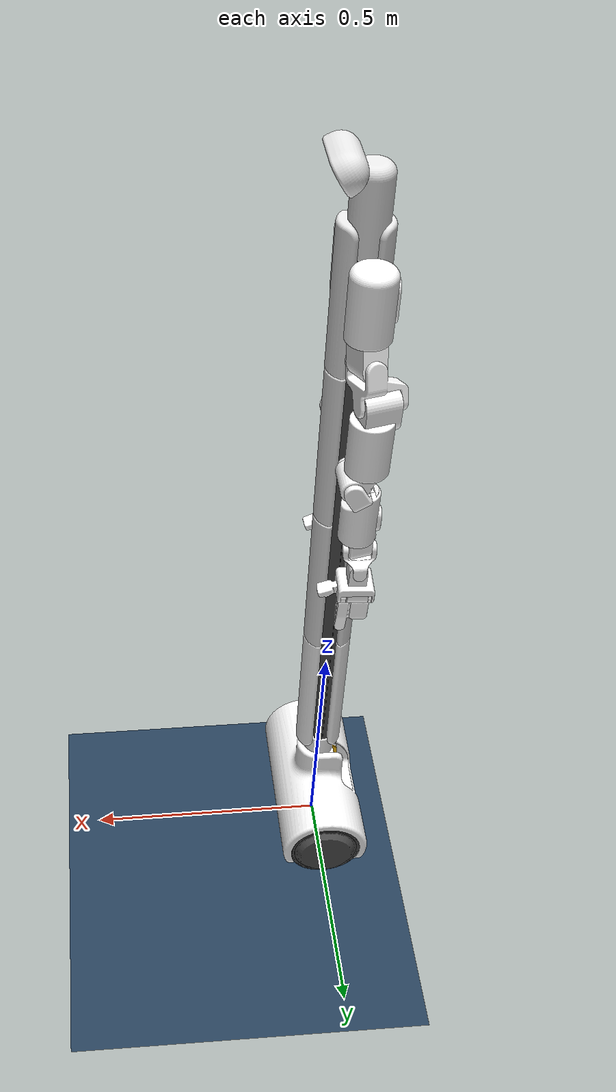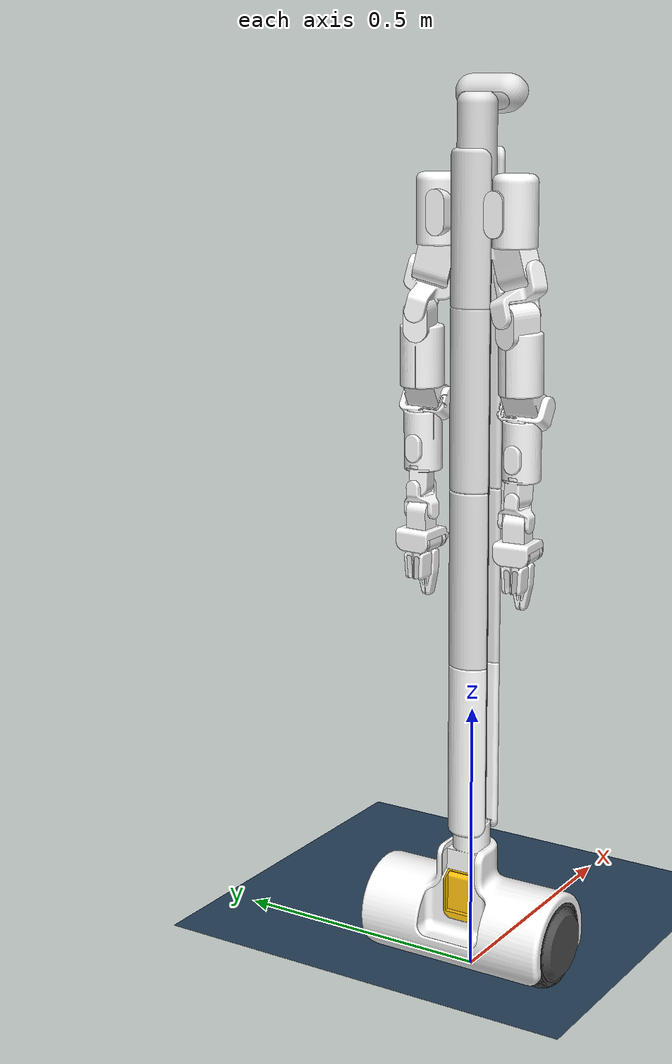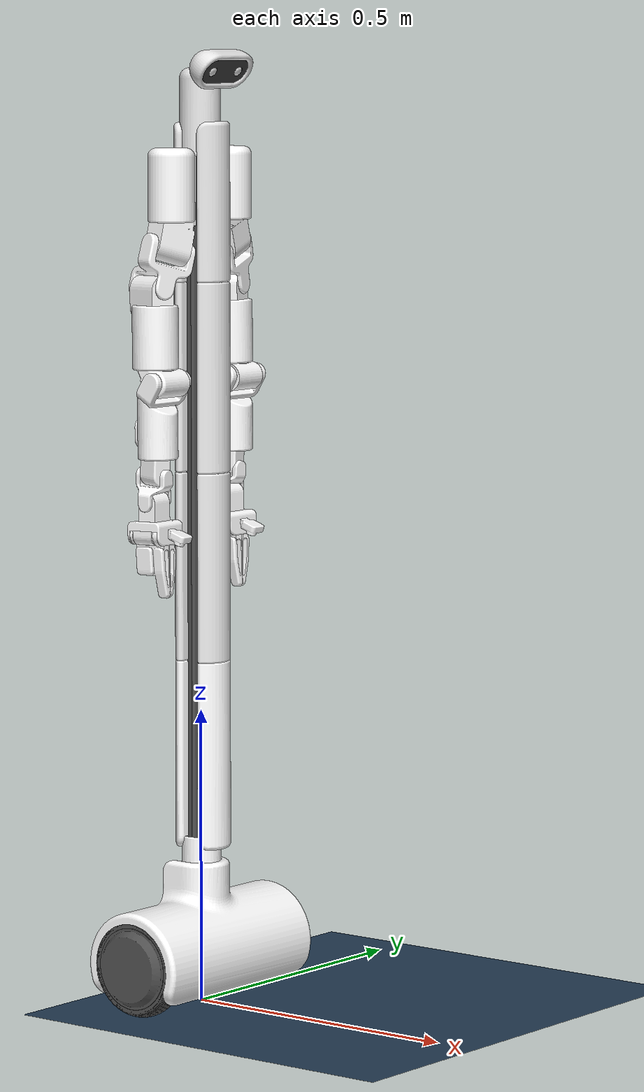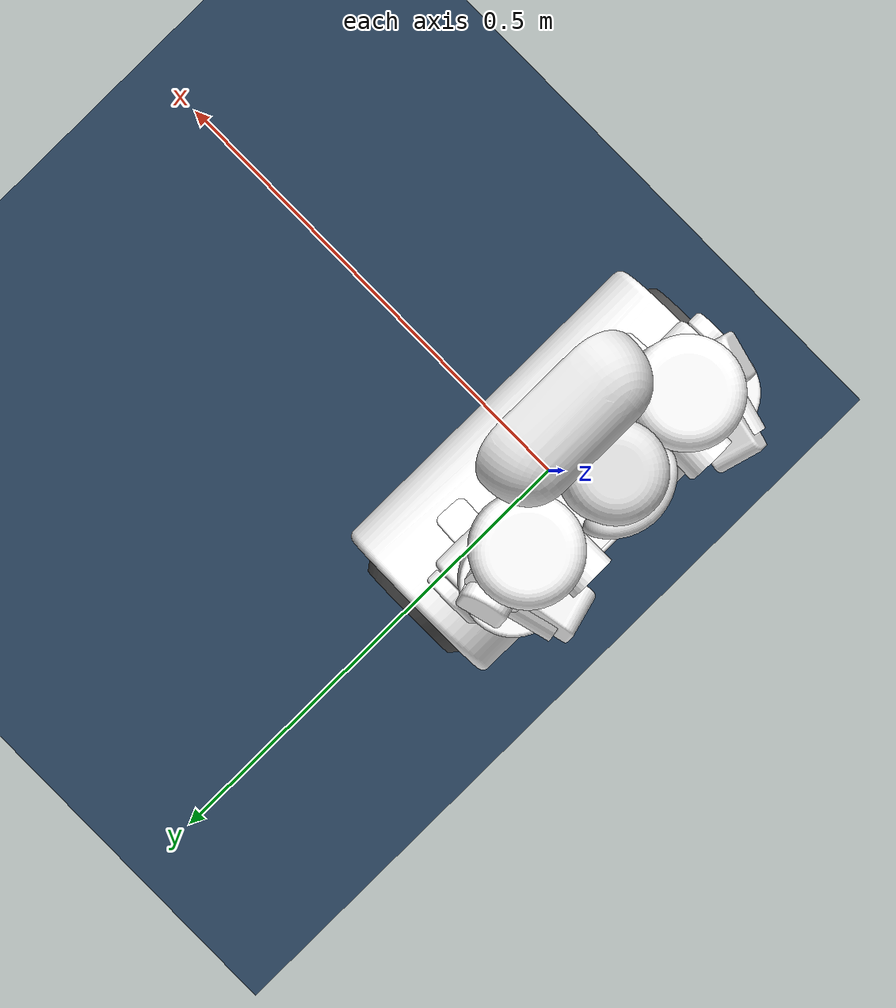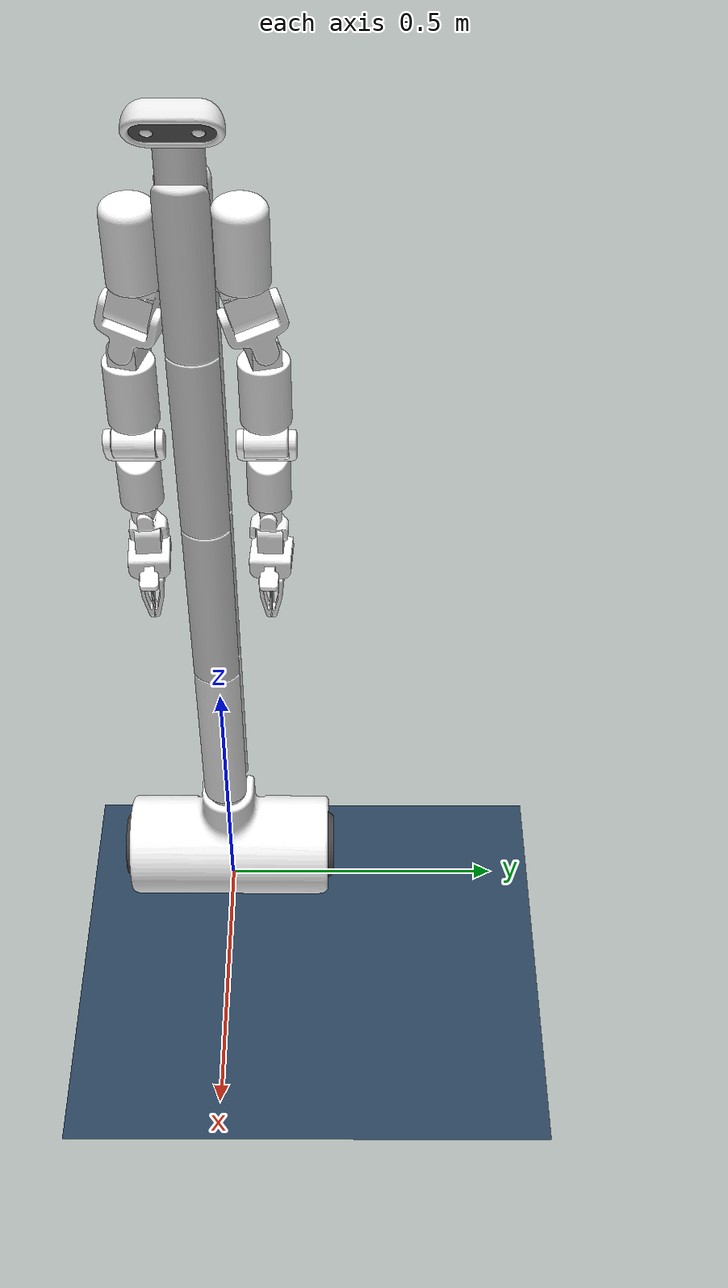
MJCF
<mujoco model="chopped_urdf_v2 scene">
  <include file="chopped_urdf_v2.xml"/>

  <statistic center="0 0 0.5" extent="1.5"/>

  <visual>
    <headlight diffuse="0.6 0.6 0.6" ambient="0.3 0.3 0.3" specular="0 0 0"/>
    <rgba haze="0.15 0.25 0.35 1"/>
    <global azimuth="140" elevation="-20"/>
  </visual>

  <asset>
    <texture type="skybox" builtin="gradient" rgb1="0.3 0.5 0.7" rgb2="0 0 0" width="512" height="3072"/>
    <texture type="2d" name="groundplane" builtin="checker" mark="edge" rgb1="0.2 0.3 0.4" rgb2="0.1 0.2 0.3"
             markrgb="0.8 0.8 0.8" width="300" height="300"/>
    <material name="groundplane" texture="groundplane" texuniform="true" texrepeat="5 5" reflectance="0.2"/>
  </asset>

  <worldbody>
    <light pos="0 0 3" dir="0 0 -1" directional="true"/>
    <geom name="floor" size="0 0 0.05" type="plane" material="groundplane"/>
  </worldbody>
</mujoco>

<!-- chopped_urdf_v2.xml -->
<mujoco model="chopped_urdf_v2">
  <compiler angle="radian" meshdir="meshes/"/>

  <asset>
    <mesh name="Base_Extrusion__Base_Extrusion" content_type="model/stl" file="Base_Extrusion__Base_Extrusion.stl"/>
    <mesh name="Base_Extrusion__Base_Extrusion__Base_Extrusion__Base_Extrusion" content_type="model/stl" file="Base_Extrusion__Base_Extrusion__Base_Extrusion__Base_Extrusion.stl"/>
    <mesh name="Base_Plate__Base_Plate" content_type="model/stl" file="Base_Plate__Base_Plate.stl"/>
    <mesh name="Base_Print__Base_Print" content_type="model/stl" file="Base_Print__Base_Print.stl"/>
    <mesh name="Battery_Terminal__Battery_Terminal" content_type="model/stl" file="Battery_Terminal__Battery_Terminal.stl"/>
    <mesh name="Bottom_Cover_Back__Bottom_Cover_Back__Bottom_Cover_Back__Bottom_Cover_Back" content_type="model/stl" file="Bottom_Cover_Back__Bottom_Cover_Back__Bottom_Cover_Back__Bottom_Cover_Back.stl"/>
    <mesh name="Bottom_Cover_Front__Bottom_Cover_Front__Bottom_Cover_Front__Bottom_Cover_Front" content_type="model/stl" file="Bottom_Cover_Front__Bottom_Cover_Front__Bottom_Cover_Front__Bottom_Cover_Front.stl"/>
    <mesh name="Camera_Cover__Camera_Cover__Camera_Cover__Camera_Cover" content_type="model/stl" file="Camera_Cover__Camera_Cover__Camera_Cover__Camera_Cover.stl"/>
    <mesh name="Cover_MiddleBot_Back__Cover_MiddleBot_Back__Cover_MiddleBot_Back__Cover_MiddleBot_Back" content_type="model/stl" file="Cover_MiddleBot_Back__Cover_MiddleBot_Back__Cover_MiddleBot_Back__Cover_MiddleBot_Back.stl"/>
    <mesh name="Cover_MiddleBot_Front__Cover_MiddleBot_Front__Cover_MiddleBot_Front__Cover_MiddleBot_Front" content_type="model/stl" file="Cover_MiddleBot_Front__Cover_MiddleBot_Front__Cover_MiddleBot_Front__Cover_MiddleBot_Front.stl"/>
    <mesh name="Cover_MiddleTop_Back__Cover_MiddleTop_Back__Cover_MiddleTop_Back__Cover_MiddleTop_Back" content_type="model/stl" file="Cover_MiddleTop_Back__Cover_MiddleTop_Back__Cover_MiddleTop_Back__Cover_MiddleTop_Back.stl"/>
    <mesh name="Cover_MiddleTop_Front__Cover_MiddleTop_Front__Cover_MiddleTop_Front__Cover_MiddleTop_Front" content_type="model/stl" file="Cover_MiddleTop_Front__Cover_MiddleTop_Front__Cover_MiddleTop_Front__Cover_MiddleTop_Front.stl"/>
    <mesh name="Cover_Top_Front__Cover_Top_Front__Cover_Top_Front__Cover_Top_Front" content_type="model/stl" file="Cover_Top_Front__Cover_Top_Front__Cover_Top_Front__Cover_Top_Front.stl"/>
    <mesh name="Head__Head__Head__Head" content_type="model/stl" file="Head__Head__Head__Head.stl"/>
    <mesh name="Head_Cover__Head_Cover__Head_Cover__Head_Cover" content_type="model/stl" file="Head_Cover__Head_Cover__Head_Cover__Head_Cover.stl"/>
    <mesh name="Left_wheel_cap__Left_wheel_cap" content_type="model/stl" file="Left_wheel_cap__Left_wheel_cap.stl"/>
    <mesh name="Left_Wheel_Tire__Left_Wheel_Tire" content_type="model/stl" file="Left_Wheel_Tire__Left_Wheel_Tire.stl"/>
    <mesh name="Main_Extrusion__Main_Extrusion__Main_Extrusion__Main_Extrusion" content_type="model/stl" file="Main_Extrusion__Main_Extrusion__Main_Extrusion__Main_Extrusion.stl"/>
    <mesh name="Mirror30__Mirror30" content_type="model/stl" file="Mirror30__Mirror30.stl"/>
    <mesh name="Right_Wheel_Cap__Right_Wheel_Cap" content_type="model/stl" file="Right_Wheel_Cap__Right_Wheel_Cap.stl"/>
    <mesh name="Right_Wheel_Tire__Right_Wheel_Tire" content_type="model/stl" file="Right_Wheel_Tire__Right_Wheel_Tire.stl"/>
    <mesh name="Top_Cover_back__Top_Cover_back__Top_Cover_back__Top_Cover_back" content_type="model/stl" file="Top_Cover_back__Top_Cover_back__Top_Cover_back__Top_Cover_back.stl"/>
    <mesh name="Bicep__Bicep" content_type="model/stl" file="Bicep__Bicep.stl"/>
    <mesh name="Bicep_Cover__Bicep_Cover" content_type="model/stl" file="Bicep_Cover__Bicep_Cover.stl"/>
    <mesh name="Forearm__Forearm" content_type="model/stl" file="Forearm__Forearm.stl"/>
    <mesh name="Forearm_Cover__Forearm_Cover" content_type="model/stl" file="Forearm_Cover__Forearm_Cover.stl"/>
    <mesh name="Forearm_Rotation__Forearm_Rotation" content_type="model/stl" file="Forearm_Rotation__Forearm_Rotation.stl"/>
    <mesh name="Hand__Hand" content_type="model/stl" file="Hand__Hand.stl"/>
    <mesh name="Hand_Motor_Mount__Hand_Motor_Mount" content_type="model/stl" file="Hand_Motor_Mount__Hand_Motor_Mount.stl"/>
    <mesh name="Left_Finger__Left_Finger" content_type="model/stl" file="Left_Finger__Left_Finger.stl"/>
    <mesh name="Right_Finger__Right_Finger" content_type="model/stl" file="Right_Finger__Right_Finger.stl"/>
    <mesh name="Shoulder__Shoulder" content_type="model/stl" file="Shoulder__Shoulder.stl"/>
    <mesh name="Shoulder_Cover__Shoulder_Cover" content_type="model/stl" file="Shoulder_Cover__Shoulder_Cover.stl"/>
    <mesh name="Shoulder_Knuckle__Shoulder_Knuckle" content_type="model/stl" file="Shoulder_Knuckle__Shoulder_Knuckle.stl"/>
    <mesh name="Wrist_Cam__Wrist_Cam" content_type="model/stl" file="Wrist_Cam__Wrist_Cam.stl"/>
    <mesh name="Wrist_Knuckle__Wrist_Knuckle" content_type="model/stl" file="Wrist_Knuckle__Wrist_Knuckle.stl"/>
    <mesh name="Shoulder__Shoulder_Mirrored" content_type="model/stl" file="Shoulder__Shoulder_Mirrored.stl"/>
    <mesh name="Shoulder_Knuckle__Shoulder_Knuckle_Mirrored" content_type="model/stl" file="Shoulder_Knuckle__Shoulder_Knuckle_Mirrored.stl"/>
    <mesh name="Bicep__Bicep_Mirrored" content_type="model/stl" file="Bicep__Bicep_Mirrored.stl"/>
    <mesh name="Forearm__Forearm_Mirrored" content_type="model/stl" file="Forearm__Forearm_Mirrored.stl"/>
    <mesh name="Forearm_Rotation__Forearm_Rotation_Mirrored" content_type="model/stl" file="Forearm_Rotation__Forearm_Rotation_Mirrored.stl"/>
    <mesh name="Wrist_Knuckle__Wrist_Knuckle_Mirrored" content_type="model/stl" file="Wrist_Knuckle__Wrist_Knuckle_Mirrored.stl"/>
    <mesh name="Hand__Hand_Mirrored" content_type="model/stl" file="Hand__Hand_Mirrored.stl"/>
    <mesh name="Wrist_Cam__Wrist_Cam_Mirrored" content_type="model/stl" file="Wrist_Cam__Wrist_Cam_Mirrored.stl"/>
    <mesh name="Hand_Motor_Mount__Hand_Motor_Mount_Mirrored" content_type="model/stl" file="Hand_Motor_Mount__Hand_Motor_Mount_Mirrored.stl"/>
    <mesh name="Right_Finger__Right_Finger_Mirrored" content_type="model/stl" file="Right_Finger__Right_Finger_Mirrored.stl"/>
    <mesh name="Left_Finger__Left_Finger_Mirrored" content_type="model/stl" file="Left_Finger__Left_Finger_Mirrored.stl"/>
    <mesh name="Forearm_Cover__Forearm_Cover_Mirrored" content_type="model/stl" file="Forearm_Cover__Forearm_Cover_Mirrored.stl"/>
    <mesh name="Bicep_Cover__Bicep_Cover_Mirrored" content_type="model/stl" file="Bicep_Cover__Bicep_Cover_Mirrored.stl"/>
    <mesh name="Shoulder_Cover__Shoulder_Cover_Mirrored" content_type="model/stl" file="Shoulder_Cover__Shoulder_Cover_Mirrored.stl"/>
  </asset>

  <worldbody>
    <body name="root">
      <body name="base_plate__base_plate" pos="0.0113398 6.4516e-07 0.0776294" quat="0.707106 -0.707108 -1.79246e-05 -1.77981e-05">
        <inertial pos="-0.0113 0.0475233 0" quat="0.707107 0 0 0.707107" mass="9.87266e-05" diaginertia="4.12406e-07 2.38457e-07 1.7421e-07"/>
        <geom type="mesh" contype="0" conaffinity="0" group="1" rgba="1 1 1 1" density="0" mesh="Base_Plate__Base_Plate"/>
        <body name="bottom_cover_front__bottom_cover_front__bottom_cover_front__bottom_cover_front" pos="0.004 0.0272667 0.000135341" quat="1 0 0 0">
          <inertial pos="0.0182036 -0.380505 -0.000135195" quat="0.707105 0.707107 -0.00114084 -0.00114084" mass="0.000584451" diaginertia="4.92374e-06 4.74887e-06 2.53843e-07"/>
          <geom type="mesh" contype="0" conaffinity="0" group="1" rgba="1 1 1 1" density="0" mesh="Bottom_Cover_Front__Bottom_Cover_Front__Bottom_Cover_Front__Bottom_Cover_Front"/>
          <body name="cover_middlebot_front__cover_middlebot_front__cover_middlebot_front__cover_middlebot_front" pos="0 0 0">
            <inertial pos="0.0181183 -0.69578 -7.50002e-05" quat="0.707107 0.707107 3.72443e-06 3.72443e-06" mass="0.000601809" diaginertia="5.33508e-06 5.1563e-06 2.59965e-07"/>
            <geom type="mesh" contype="0" conaffinity="0" group="1" rgba="0.894118 0.894118 0.894118 1" density="0" mesh="Cover_MiddleBot_Front__Cover_MiddleBot_Front__Cover_MiddleBot_Front__Cover_MiddleBot_Front"/>
            <body name="cover_middletop_front__cover_middletop_front__cover_middletop_front__cover_middletop_front" pos="0 0 0">
              <inertial pos="0.0181183 -1.01578 -7.5e-05" quat="0.707107 0.707107 3.72443e-06 3.72443e-06" mass="0.000601809" diaginertia="5.33508e-06 5.1563e-06 2.59965e-07"/>
              <geom type="mesh" contype="0" conaffinity="0" group="1" rgba="0.894118 0.894118 0.894118 1" density="0" mesh="Cover_MiddleTop_Front__Cover_MiddleTop_Front__Cover_MiddleTop_Front__Cover_MiddleTop_Front"/>
              <body name="cover_top_front__cover_top_front__cover_top_front__cover_top_front" pos="0 0 0">
                <inertial pos="0.0184763 -1.30736 2.43867e-07" quat="0.707106 0.707106 0.000696222 0.000696222" mass="0.000494583" diaginertia="3.02305e-06 2.87685e-06 2.12522e-07"/>
                <geom type="mesh" contype="0" conaffinity="0" group="1" rgba="0.894118 0.894118 0.894118 1" density="0" mesh="Cover_Top_Front__Cover_Top_Front__Cover_Top_Front__Cover_Top_Front"/>
                <body name="top_cover_back__top_cover_back__top_cover_back__top_cover_back" pos="0 0 0">
                  <inertial pos="-0.0405335 -1.30539 1.66315e-07" quat="0.707106 0.707107 -0.000696452 -0.000696451" mass="0.000494579" diaginertia="3.023e-06 2.87681e-06 2.12518e-07"/>
                  <geom type="mesh" contype="0" conaffinity="0" group="1" rgba="0.894118 0.894118 0.894118 1" density="0" mesh="Top_Cover_back__Top_Cover_back__Top_Cover_back__Top_Cover_back"/>
                  <body name="cover_middletop_back__cover_middletop_back__cover_middletop_back__cover_middletop_back" pos="0 0 0">
                    <inertial pos="-0.0407183 -1.01578 7.82824e-05" quat="0.707107 0.707107 -3.72443e-06 -3.72443e-06" mass="0.000601809" diaginertia="5.33508e-06 5.1563e-06 2.59965e-07"/>
                    <geom type="mesh" contype="0" conaffinity="0" group="1" rgba="0.894118 0.894118 0.894118 1" density="0" mesh="Cover_MiddleTop_Back__Cover_MiddleTop_Back__Cover_MiddleTop_Back__Cover_MiddleTop_Back"/>
                    <body name="cover_middlebot_back__cover_middlebot_back__cover_middlebot_back__cover_middlebot_back" pos="0 0 0">
                      <inertial pos="-0.0407183 -0.69578 7.82824e-05" quat="0.707107 0.707107 -3.72443e-06 -3.72443e-06" mass="0.000601809" diaginertia="5.33508e-06 5.1563e-06 2.59965e-07"/>
                      <geom type="mesh" contype="0" conaffinity="0" group="1" rgba="0.894118 0.894118 0.894118 1" density="0" mesh="Cover_MiddleBot_Back__Cover_MiddleBot_Back__Cover_MiddleBot_Back__Cover_MiddleBot_Back"/>
                      <body name="bottom_cover_back__bottom_cover_back__bottom_cover_back__bottom_cover_back" pos="0 0 0">
                        <inertial pos="-0.0408036 -0.380505 0.000138477" quat="0.707107 0.707105 0.00114084 0.00114084" mass="0.000584451" diaginertia="4.92374e-06 4.74887e-06 2.53843e-07"/>
                        <geom type="mesh" contype="0" conaffinity="0" group="1" rgba="1 1 1 1" density="0" mesh="Bottom_Cover_Back__Bottom_Cover_Back__Bottom_Cover_Back__Bottom_Cover_Back"/>
                      </body>
                    </body>
                  </body>
                </body>
              </body>
            </body>
          </body>
        </body>
        <body name="main_extrusion__main_extrusion__main_extrusion__main_extrusion" pos="0 0 0">
          <inertial pos="-0.0113 -0.77 0" quat="0.707107 0.707107 0 0" mass="0.000818503" diaginertia="0.000101652 0.000101652 2.59807e-07"/>
          <geom type="mesh" contype="0" conaffinity="0" group="1" rgba="0.301961 0.301961 0.301961 1" density="0" mesh="Main_Extrusion__Main_Extrusion__Main_Extrusion__Main_Extrusion"/>
          <body name="base_extrusion__base_extrusion__base_extrusion__base_extrusion" pos="0 0 0">
            <inertial pos="-0.0110625 0.02 0" mass="0.000110836" diaginertia="5.95236e-07 5.95236e-07 3.59269e-08"/>
            <geom type="mesh" contype="0" conaffinity="0" group="1" rgba="0.8 0.8 0.8 1" density="0" mesh="Base_Extrusion__Base_Extrusion__Base_Extrusion__Base_Extrusion"/>
            <body name="base_extrusion__base_extrusion" pos="0 0 0">
              <inertial pos="-0.0113 -0.08 0" quat="0.707107 0.707107 0 0" mass="0.000107345" diaginertia="2.46038e-07 2.46038e-07 3.4073e-08"/>
              <geom type="mesh" contype="0" conaffinity="0" group="1" rgba="0.792157 0.819608 0.933333 1" density="0" mesh="Base_Extrusion__Base_Extrusion"/>
              <body name="base_print__base_print" pos="0 0 0">
                <inertial pos="-0.032381 -0.125405 -2.07074e-07" quat="0.693267 0.693264 0.139224 0.139224" mass="9.90885e-05" diaginertia="6.50614e-07 5.7925e-07 1.36178e-07"/>
                <geom type="mesh" contype="0" conaffinity="0" group="1" rgba="1 1 1 1" density="0" mesh="Base_Print__Base_Print"/>
                <body name="battery_terminal__battery_terminal" pos="0 0 0">
                  <inertial pos="-0.0429972 -0.0685507 -6.34217e-12" quat="0.706973 0.706973 0.0137525 0.0137525" mass="0.000103703" diaginertia="8.97074e-08 6.2996e-08 3.65842e-08"/>
                  <geom type="mesh" contype="0" conaffinity="0" group="1" rgba="1 0.756863 0.054902 1" density="0" mesh="Battery_Terminal__Battery_Terminal"/>
                  <body name="mirror30__mirror30" pos="0 0 0">
                    <inertial pos="0.00724413 -0.049289 3.78896e-08" quat="0.603628 0 0 0.797266" mass="0.276482" diaginertia="0.00458463 0.00428418 0.0021062"/>
                    <geom type="mesh" contype="0" conaffinity="0" group="1" rgba="1 1 1 1" density="0" mesh="Mirror30__Mirror30"/>
                    <body name="right_wheel_cap__right_wheel_cap" pos="0 0 0">
                      <inertial pos="-0.0113 -0.0069695 -0.173337" quat="0.5 0.5 -0.5 0.5" mass="0.000172835" diaginertia="5.46462e-07 3.1705e-07 3.1705e-07"/>
                      <geom type="mesh" contype="0" conaffinity="0" group="1" rgba="0.301961 0.301961 0.301961 1" density="0" mesh="Right_Wheel_Cap__Right_Wheel_Cap"/>
                      <body name="left_wheel_cap__left_wheel_cap" pos="0 0 0">
                        <inertial pos="-0.0113 -0.0069695 0.173337" quat="0.5 0.5 -0.5 0.5" mass="0.000172835" diaginertia="5.46462e-07 3.1705e-07 3.1705e-07"/>
                        <geom type="mesh" contype="0" conaffinity="0" group="1" rgba="0.301961 0.301961 0.301961 1" density="0" mesh="Left_wheel_cap__Left_wheel_cap"/>
                        <body name="head__head__head__head" pos="0 0 0">
                          <inertial pos="-0.0040165 -1.44214 2.73596e-07" quat="0.438588 0.554654 -0.438588 0.554654" mass="0.000627862" diaginertia="1.67139e-06 1.67057e-06 4.7724e-07"/>
                          <geom type="mesh" contype="0" conaffinity="0" group="1" rgba="0.894118 0.894118 0.894118 1" density="0" mesh="Head__Head__Head__Head"/>
                          <body name="camera_cover__camera_cover__camera_cover__camera_cover" pos="0 0 0">
                            <inertial pos="0.0433442 -1.49744 3.49846e-07" quat="0.95882 0 0 0.284014" mass="9.18732e-06" diaginertia="1.04898e-08 8.56038e-09 1.94651e-09"/>
                            <geom type="mesh" contype="0" conaffinity="0" group="1" rgba="0.25098 0.25098 0.25098 1" density="0" mesh="Camera_Cover__Camera_Cover__Camera_Cover__Camera_Cover"/>
                            <body name="head_cover__head_cover__head_cover__head_cover" pos="0 0 0">
                              <inertial pos="0.0313707 -1.51213 -6.7635e-07" quat="0.96791 0 0 0.251298" mass="0.000122005" diaginertia="2.17832e-07 2.01406e-07 5.79999e-08"/>
                              <geom type="mesh" contype="0" conaffinity="0" group="1" rgba="0.894118 0.894118 0.894118 1" density="0" mesh="Head_Cover__Head_Cover__Head_Cover__Head_Cover"/>
                              <body name="right_wheel_tire__right_wheel_tire" pos="0 0 0">
                                <inertial pos="-0.0113 -0.0069695 -0.161099" quat="0.5 0.5 -0.5 0.5" mass="0.000384041" diaginertia="2.05949e-06 1.08073e-06 1.08073e-06"/>
                                <geom type="mesh" contype="0" conaffinity="0" group="1" rgba="0.301961 0.301961 0.301961 1" density="0" mesh="Right_Wheel_Tire__Right_Wheel_Tire"/>
                                <body name="left_wheel_tire__left_wheel_tire" pos="0 0 0">
                                  <inertial pos="-0.0113 -0.0069695 0.161099" quat="0.5 0.5 -0.5 0.5" mass="0.000384041" diaginertia="2.05949e-06 1.08073e-06 1.08073e-06"/>
                                  <geom type="mesh" contype="0" conaffinity="0" group="1" rgba="0.301961 0.301961 0.301961 1" density="0" mesh="Left_Wheel_Tire__Left_Wheel_Tire"/>
                                </body>
                              </body>
                            </body>
                          </body>
                        </body>
                      </body>
                    </body>
                  </body>
                </body>
              </body>
            </body>
          </body>
          <body name="arm_base" pos="-0.0113422 0.0472371 -5.31838e-07" quat="0.707106 0.707108 1.79246e-05 1.77981e-05">
            <inertial pos="0 0 0" mass="1e-09" diaginertia="0 0 0"/>
            <body name="shoulder__shoulder" pos="7.84415e-09 -0.0275 1.40573" quat="1 4.63465e-12 1.8366e-06 1.42623e-07">
              <inertial pos="-0.00207733 -0.0439747 -0.0719634" quat="0.993106 -0.0357613 0.00588813 -0.111477" mass="0.00070326" diaginertia="1.99587e-06 1.92138e-06 4.97044e-07"/>
              <joint name="rj0" type="slide" range="-1.03044 0" actuatorfrcrange="-10 10"/>
              <geom pos="0.0112151 0.0286011 -1.35824" quat="0 1 0 0" type="mesh" contype="0" conaffinity="0" group="1" rgba="1 1 1 1" density="0" mesh="Shoulder__Shoulder"/>
              <body name="shoulder_cover__shoulder_cover" pos="0.0112151 0.0286011 -1.35824" quat="0 1 0 0">
                <inertial pos="-0.0111642 0.0752512 -1.30987" mass="0.000573942" diaginertia="9.07984e-07 9.07984e-07 4.31252e-07"/>
                <geom type="mesh" contype="0" conaffinity="0" group="1" rgba="1 1 1 1" density="0" mesh="Shoulder_Cover__Shoulder_Cover"/>
              </body>
              <body name="shoulder_knuckle__shoulder_knuckle" pos="-0.00793877 -0.0857475 -0.144638" quat="0.76632 0.608761 -1.00888e-06 -0.205336">
                <inertial pos="-0.00359973 -0.0351324 -0.032679" quat="0.0694297 0.857532 0.164673 0.48239" mass="0.000133846" diaginertia="1.845e-07 1.38698e-07 1.23043e-07"/>
                <joint name="rj1" range="-2.0944 2.0944" actuatorfrcrange="-10 10"/>
                <geom pos="0.285662 -1.10745 -0.425773" quat="0.608761 0.76632 0.205335 0" type="mesh" contype="0" conaffinity="0" group="1" rgba="1 1 1 1" density="0" mesh="Shoulder_Knuckle__Shoulder_Knuckle"/>
                <body name="bicep__bicep" pos="-0.0345871 -0.0799863 -0.0310962" quat="0.425282 0.427297 0.563398 0.56492">
                  <inertial pos="-0.0787373 -0.0223314 0.0425602" quat="0.574949 0.0709813 0.0593942 0.812938" mass="0.000648254" diaginertia="2.06195e-06 2.03816e-06 3.7544e-07"/>
                  <joint name="rj2" range="-2.0944 2.0944" actuatorfrcrange="-10 10"/>
                  <geom pos="-1.08044 -0.3902 0.0283732" quat="0.70241 0.181779 -0.688169 1.62104e-12" type="mesh" contype="0" conaffinity="0" group="1" rgba="1 1 1 1" density="0" mesh="Bicep__Bicep"/>
                  <body name="bicep_cover__bicep_cover" pos="-1.08044 -0.3902 0.0283732" quat="0.70241 0.181779 -0.688169 1.62104e-12">
                    <inertial pos="-0.0254793 0.097391 -1.06421" quat="0.988942 0.00734107 -0.0909335 0.11692" mass="9.82442e-05" diaginertia="1.65544e-07 1.58298e-07 1.27144e-07"/>
                    <geom type="mesh" contype="0" conaffinity="0" group="1" rgba="1 1 1 1" density="0" mesh="Bicep_Cover__Bicep_Cover"/>
                  </body>
                  <body name="forearm__forearm" pos="-0.140146 -0.0763873 0.0558851" quat="0.62745 -0.367259 -0.485501 -0.485505">
                    <inertial pos="-0.0213131 -0.0661025 0.0333011" quat="0.998205 -0.000305943 -0.0598432 0.00250762" mass="0.000301123" diaginertia="5.0647e-07 4.49334e-07 1.82759e-07"/>
                    <joint name="rj3" range="-2.0944 2.0944" actuatorfrcrange="-10 10"/>
                    <geom pos="-0.000283681 -0.986812 -0.068819" quat="0.705623 0.708583 -0.00249187 0" type="mesh" contype="0" conaffinity="0" group="1" rgba="1 1 1 1" density="0" mesh="Forearm__Forearm"/>
                    <body name="forearm_cover__forearm_cover" pos="-0.000283681 -0.986812 -0.068819" quat="0.705623 0.708583 -0.00249187 0">
                      <inertial pos="-0.0228592 0.097541 -0.910018" quat="0.988569 -0.00684891 0.146667 -0.0342637" mass="7.56956e-05" diaginertia="1.09984e-07 1.00214e-07 6.96488e-08"/>
                      <geom type="mesh" contype="0" conaffinity="0" group="1" rgba="1 1 1 1" density="0" mesh="Forearm_Cover__Forearm_Cover"/>
                    </body>
                    <body name="forearm_rotation__forearm_rotation" pos="-0.026394 -0.12487 0.0320705" quat="0.294631 -0.264653 0.65568 0.642834">
                      <inertial pos="3.56774e-05 2.45812e-05 -0.021805" quat="0.63268 0.00171299 0.00374296 0.774403" mass="6.64039e-05" diaginertia="2.28043e-08 1.96823e-08 1.64393e-08"/>
                      <joint name="rj4" range="-2.0944 2.0944" actuatorfrcrange="-10 10"/>
                      <geom pos="0.0641084 -0.0805833 -0.860955" quat="0.00516927 -0.393949 0.919118 -2.09626e-09" type="mesh" contype="0" conaffinity="0" group="1" rgba="1 1 1 1" density="0" mesh="Forearm_Rotation__Forearm_Rotation"/>
                      <body name="wrist_knuckle__wrist_knuckle" pos="-0.0131274 -0.014875 -0.0327431" quat="0.668883 0.356813 -0.610479 0.229338">
                        <inertial pos="-0.0218344 -0.00560663 -0.02105" quat="-0.0884246 0.708648 0.053519 0.69795" mass="4.23359e-05" diaginertia="2.23246e-08 2.15936e-08 2.14405e-08"/>
                        <joint name="rj5" range="-2.0944 2.0944" actuatorfrcrange="-10 10"/>
                        <geom pos="-0.791586 -0.264038 -0.0274632" quat="0.703518 0.141721 -0.696403 2.94367e-05" type="mesh" contype="0" conaffinity="0" group="1" rgba="1 1 1 1" density="0" mesh="Wrist_Knuckle__Wrist_Knuckle"/>
                        <body name="hand__hand" pos="-0.0480111 0.0111602 -0.0199286" quat="0.504103 -0.402362 -0.581468 -0.495863">
                          <inertial pos="0.0104256 -0.0225964 -0.0208472" quat="0.557084 0.277612 0.286901 0.728201" mass="0.00010405" diaginertia="1.02991e-07 9.06866e-08 5.91648e-08"/>
                          <joint name="rj6" range="-2.0944 2.0944" actuatorfrcrange="-10 10"/>
                          <geom pos="0.158112 -0.771279 -0.0790065" quat="0.724748 0.675251 0.137026 0" type="mesh" contype="0" conaffinity="0" group="1" rgba="1 1 1 1" density="0" mesh="Hand__Hand"/>
                          <body name="left_finger__left_finger" pos="0.0413008 -0.0450476 -0.0372147" quat="0.504688 0.364974 0.605635 0.495268">
                            <inertial pos="-0.0340814 -0.00413194 -0.0245907" quat="0.629243 0.0482231 0.0863023 0.770896" mass="4.61241e-05" diaginertia="5.87004e-08 4.45028e-08 1.8338e-08"/>
                            <joint name="right_left_gripper" range="0 1" actuatorfrcrange="-10 10"/>
                            <geom pos="-0.700467 -0.222749 -0.0540855" quat="0.695209 0.144141 -0.704207 1.7071e-08" type="mesh" contype="0" conaffinity="0" group="1" rgba="1 1 1 1" density="0" mesh="Left_Finger__Left_Finger"/>
                          </body>
                          <body name="right_finger__right_finger" pos="0.0413009 -0.0450476 -0.00313575" quat="0.520146 0.586412 -0.395122 -0.479008">
                            <inertial pos="0.0348601 -0.000281218 0.0243554" quat="0.624049 0.119738 0.01936 0.771914" mass="4.56895e-05" diaginertia="5.79256e-08 4.38695e-08 1.81194e-08"/>
                            <joint name="right_right_gripper" range="0 1" actuatorfrcrange="-10 10"/>
                            <geom pos="0.736527 0.0353731 0.0544735" quat="0.718808 -0.139409 0.681088 1.76495e-08" type="mesh" contype="0" conaffinity="0" group="1" rgba="1 1 1 1" density="0" mesh="Right_Finger__Right_Finger"/>
                          </body>
                          <body name="wrist_cam__wrist_cam" pos="0.158112 -0.771279 -0.0790065" quat="0.724748 0.675251 0.137026 0">
                            <inertial pos="0.0335636 0.104461 -0.727313" quat="0.923047 -0.0130961 0.3712 0.100115" mass="2.92471e-06" diaginertia="1.54368e-10 1.39719e-10 1.24362e-10"/>
                            <geom type="mesh" contype="0" conaffinity="0" group="1" rgba="0.792157 0.819608 0.933333 1" density="0" mesh="Wrist_Cam__Wrist_Cam"/>
                            <body name="hand_motor_mount__hand_motor_mount" pos="0 0 0">
                              <inertial pos="-0.0211672 0.094284 -0.72929" quat="0.447815 0.538612 -0.441638 0.560638" mass="3.2881e-05" diaginertia="2.06219e-08 1.75599e-08 1.01819e-08"/>
                              <geom type="mesh" contype="0" conaffinity="0" group="1" rgba="1 1 1 1" density="0" mesh="Hand_Motor_Mount__Hand_Motor_Mount"/>
                            </body>
                          </body>
                          <body name="right_eef" pos="0.0337039 -0.14163 -0.0201752" quat="0.702288 0.702288 0.0824116 0.0824116">
                            <inertial pos="0 0 0" mass="1e-09" diaginertia="0 0 0"/>
                          </body>
                        </body>
                      </body>
                    </body>
                  </body>
                </body>
              </body>
            </body>
            <body name="l_shoulder__shoulder" pos="-7.84415e-09 0.0275 1.40573" quat="1 2.65358e-06 1.8366e-06 1.42623e-07">
              <inertial pos="-0.00207733 0.0439747 -0.0719634" quat="0.993106 0.0357613 0.00588813 0.111477" mass="0.00070326" diaginertia="1.99587e-06 1.92138e-06 4.97044e-07"/>
              <joint name="lj0" type="slide" range="-1.03044 0" actuatorfrcrange="-10 10"/>
              <geom pos="0.0112151 -0.0286011 -1.35824" quat="0 1 0 0" type="mesh" contype="0" conaffinity="0" group="1" rgba="1 1 1 1" density="0" mesh="Shoulder__Shoulder_Mirrored"/>
              <body name="l_shoulder_cover__shoulder_cover" pos="0.0112151 -0.0286011 -1.35824" quat="0 -1 0 0">
                <inertial pos="-0.0111642 -0.0752512 -1.30987" mass="0.000573942" diaginertia="9.07984e-07 9.07984e-07 4.31252e-07"/>
                <geom type="mesh" contype="0" conaffinity="0" group="1" rgba="1 1 1 1" density="0" mesh="Shoulder_Cover__Shoulder_Cover_Mirrored"/>
              </body>
              <body name="l_shoulder_knuckle__shoulder_knuckle" pos="-0.00793877 0.0857475 -0.144638" quat="0.588018 0.793353 7.74139e-07 0.15756">
                <inertial pos="-0.0206837 -0.0286257 0.032679" quat="-0.0694297 0.857532 -0.164673 0.48239" mass="0.000133846" diaginertia="1.845e-07 1.38698e-07 1.23043e-07"/>
                <joint name="lj1" range="-2.0944 2.0944" actuatorfrcrange="-10 10"/>
                <geom pos="-0.306335 -1.10191 0.425773" quat="0.793353 0.588018 -0.157559 0" type="mesh" contype="0" conaffinity="0" group="1" rgba="1 1 1 1" density="0" mesh="Shoulder_Knuckle__Shoulder_Knuckle_Mirrored"/>
                <body name="l_bicep__bicep" pos="-0.0699464 -0.0519767 0.0310962" quat="0.558556 0.557003 0.4356 0.433608">
                  <inertial pos="-0.0787373 0.0223314 0.0425602" quat="0.812938 0.0593942 0.0709813 0.574949" mass="0.000648254" diaginertia="2.06195e-06 2.03816e-06 3.7544e-07"/>
                  <joint name="lj2" range="-2.0944 2.0944" actuatorfrcrange="-10 10"/>
                  <geom pos="-1.08044 0.3902 0.0283732" quat="0.70241 -0.181779 -0.688169 -1.62104e-12" type="mesh" contype="0" conaffinity="0" group="1" rgba="1 1 1 1" density="0" mesh="Bicep__Bicep_Mirrored"/>
                  <body name="l_bicep_cover__bicep_cover" pos="-1.08044 0.3902 0.0283732" quat="0.70241 -0.181779 -0.688169 -1.62104e-12">
                    <inertial pos="-0.0254793 -0.097391 -1.06421" quat="0.988942 -0.00734107 -0.0909335 -0.11692" mass="9.82442e-05" diaginertia="1.65544e-07 1.58298e-07 1.27144e-07"/>
                    <geom type="mesh" contype="0" conaffinity="0" group="1" rgba="1 1 1 1" density="0" mesh="Bicep_Cover__Bicep_Cover_Mirrored"/>
                  </body>
                  <body name="l_forearm__forearm" pos="-0.140146 0.0763873 0.0558851" quat="-0.36555 0.625739 0.487709 0.486789">
                    <inertial pos="-0.0208477 -0.0662508 -0.0333011" quat="0.998205 0.000305943 -0.0598432 -0.00250762" mass="0.000301123" diaginertia="5.0647e-07 4.49334e-07 1.82759e-07"/>
                    <joint name="lj3" range="-2.0944 2.0944" actuatorfrcrange="-10 10"/>
                    <geom pos="0.00665687 -0.98679 0.068819" quat="0.708587 0.705619 0.00248144 0" type="mesh" contype="0" conaffinity="0" group="1" rgba="1 1 1 1" density="0" mesh="Forearm__Forearm_Mirrored"/>
                    <body name="l_forearm_cover__forearm_cover" pos="0.00665687 -0.98679 0.068819" quat="0.708587 0.705619 0.00248144 0">
                      <inertial pos="-0.0228592 -0.097541 -0.910018" quat="0.988569 0.00684891 0.146667 0.0342637" mass="7.56956e-05" diaginertia="1.09984e-07 1.00214e-07 6.96488e-08"/>
                      <geom type="mesh" contype="0" conaffinity="0" group="1" rgba="1 1 1 1" density="0" mesh="Forearm_Cover__Forearm_Cover_Mirrored"/>
                    </body>
                    <body name="l_forearm_rotation__forearm_rotation" pos="-0.0255151 -0.125052 -0.0320705" quat="-0.266957 0.292369 0.643866 0.654745">
                      <inertial pos="3.56774e-05 -2.45812e-05 -0.021805" quat="0.774403 0.00374296 0.00171299 0.63268" mass="6.64039e-05" diaginertia="2.28043e-08 1.96823e-08 1.64393e-08"/>
                      <joint name="lj4" range="-2.0944 2.0944" actuatorfrcrange="-10 10"/>
                      <geom pos="0.0641084 0.0805833 -0.860955" quat="0.00516927 0.393949 0.919118 2.09626e-09" type="mesh" contype="0" conaffinity="0" group="1" rgba="1 1 1 1" density="0" mesh="Forearm_Rotation__Forearm_Rotation_Mirrored"/>
                      <body name="l_wrist_knuckle__wrist_knuckle" pos="-0.0131274 0.014875 -0.0327431" quat="0.668883 -0.356813 -0.610479 -0.229338">
                        <inertial pos="-0.0218344 0.00560663 -0.02105" quat="0.0884246 0.708648 -0.053519 0.69795" mass="4.23359e-05" diaginertia="2.23246e-08 2.15936e-08 2.14405e-08"/>
                        <joint name="lj5" range="-2.0944 2.0944" actuatorfrcrange="-10 10"/>
                        <geom pos="-0.791586 0.264038 -0.0274632" quat="0.703518 -0.141721 -0.696403 -2.94367e-05" type="mesh" contype="0" conaffinity="0" group="1" rgba="1 1 1 1" density="0" mesh="Wrist_Knuckle__Wrist_Knuckle_Mirrored"/>
                        <body name="l_hand__hand" pos="-0.0480111 -0.0111602 -0.0199286" quat="0.509963 -0.592647 -0.385706 -0.489834">
                          <inertial pos="0.000792808 -0.0248729 0.0208472" quat="0.728201 0.286901 0.277612 0.557084" mass="0.00010405" diaginertia="1.02991e-07 9.06866e-08 5.91648e-08"/>
                          <joint name="lj6" range="-2.0944 2.0944" actuatorfrcrange="-10 10"/>
                          <geom pos="-0.15504 -0.771902 0.0790065" quat="0.689014 0.710272 -0.144133 0" type="mesh" contype="0" conaffinity="0" group="1" rgba="1 1 1 1" density="0" mesh="Hand__Hand_Mirrored"/>
                          <body name="l_left_finger__left_finger" pos="0.0204743 -0.0575834 0.0372147" quat="0.496119 0.414495 -0.572882 -0.503851">
                            <inertial pos="0.0329639 -0.00959125 0.0245907" quat="0.770896 0.0863023 0.0482231 0.629243" mass="4.61241e-05" diaginertia="5.87004e-08 4.45028e-08 1.8338e-08"/>
                            <joint name="left_left_gripper" range="0 1" actuatorfrcrange="-10 10"/>
                            <geom pos="0.731653 -0.070385 0.0540855" quat="0.718808 0.139409 0.681088 1.76511e-08" type="mesh" contype="0" conaffinity="0" group="1" rgba="1 1 1 1" density="0" mesh="Left_Finger__Left_Finger_Mirrored"/>
                          </body>
                          <body name="l_right_finger__right_finger" pos="0.0204743 -0.0575834 0.00313575" quat="0.478128 0.593102 0.385006 0.520954">
                            <inertial pos="-0.0319461 0.0139555 -0.0243554" quat="0.771914 0.01936 0.119738 0.624049" mass="4.56895e-05" diaginertia="5.79256e-08 4.38695e-08 1.81194e-08"/>
                            <joint name="left_right_gripper" range="0 1" actuatorfrcrange="-10 10"/>
                            <geom pos="-0.691192 0.25686 -0.0544735" quat="0.695209 -0.144141 -0.704207 1.70707e-08" type="mesh" contype="0" conaffinity="0" group="1" rgba="1 1 1 1" density="0" mesh="Right_Finger__Right_Finger_Mirrored"/>
                          </body>
                          <body name="l_wrist_cam__wrist_cam" pos="-0.15504 -0.771902 0.0790065" quat="0.689014 0.710272 -0.144133 0">
                            <inertial pos="0.0335636 -0.104461 -0.727313" quat="0.923047 0.0130961 0.3712 -0.100115" mass="2.92471e-06" diaginertia="1.54368e-10 1.39719e-10 1.24362e-10"/>
                            <geom type="mesh" contype="0" conaffinity="0" group="1" rgba="0.792157 0.819608 0.933333 1" density="0" mesh="Wrist_Cam__Wrist_Cam_Mirrored"/>
                            <body name="l_hand_motor_mount__hand_motor_mount" pos="0 0 0">
                              <inertial pos="-0.0211672 -0.094284 -0.72929" quat="0.538612 0.447815 -0.560638 0.441638" mass="3.2881e-05" diaginertia="2.06219e-08 1.75599e-08 1.01819e-08"/>
                              <geom type="mesh" contype="0" conaffinity="0" group="1" rgba="1 1 1 1" density="0" mesh="Hand_Motor_Mount__Hand_Motor_Mount_Mirrored"/>
                            </body>
                          </body>
                          <body name="left_eef" pos="-0.0241696 -0.143565 0.0201752" quat="0.704649 0.704649 -0.0589006 -0.0589006">
                            <inertial pos="0 0 0" mass="1e-09" diaginertia="0 0 0"/>
                          </body>
                        </body>
                      </body>
                    </body>
                  </body>
                </body>
              </body>
            </body>
          </body>
        </body>
      </body>
    </body>
  </worldbody>

  <equality>
    <joint joint1="right_right_gripper" joint2="right_left_gripper"/>
    <joint joint1="left_right_gripper" joint2="left_left_gripper"/>
  </equality>
</mujoco>
